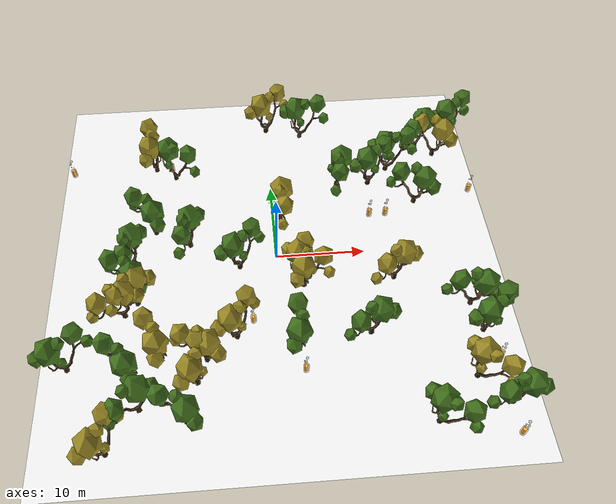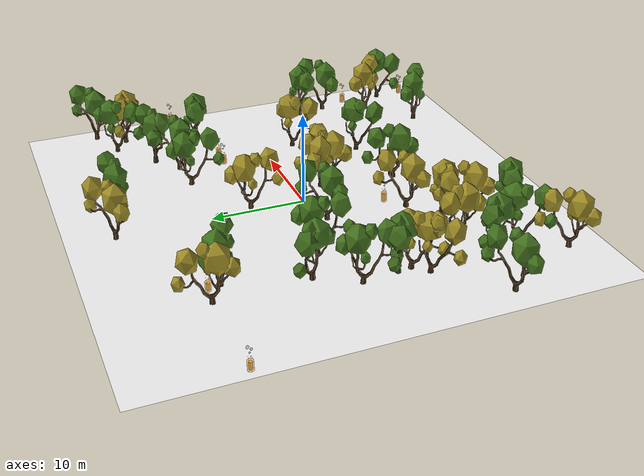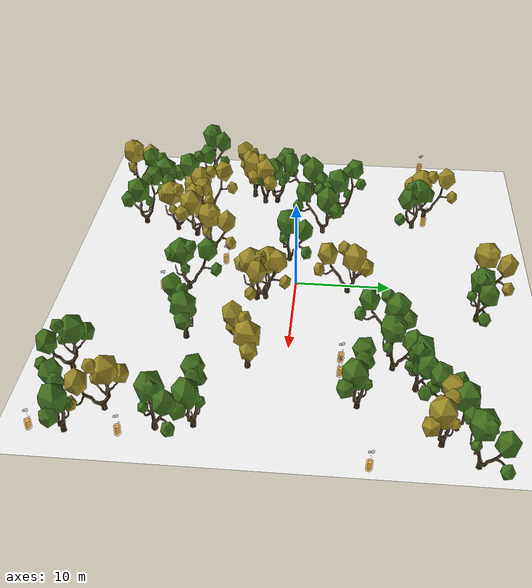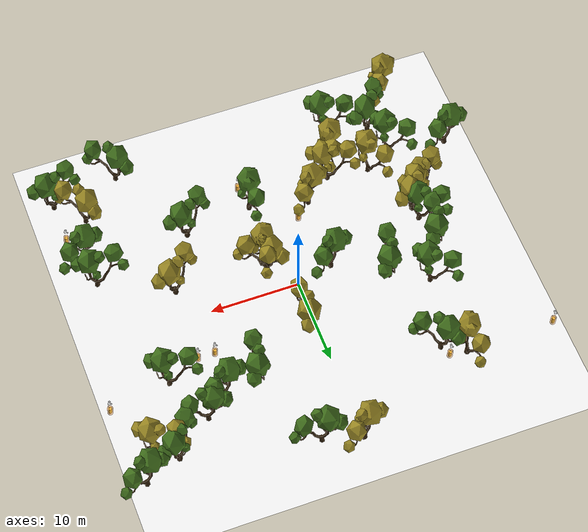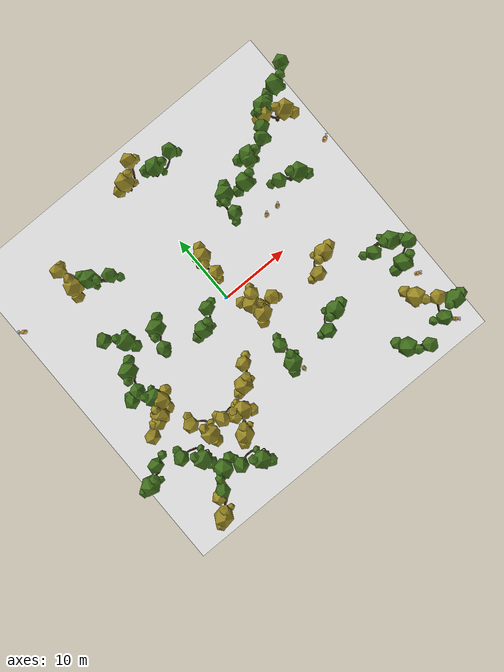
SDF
<sdf version="1.8">
 <world name="bushland_world">
  <plugin filename="ignition-gazebo-thermal-system" name="ignition::gazebo::systems::Thermal">
   <temperature>293.15</temperature>
  </plugin>
  <plugin name="ignition::gazebo::systems::Physics" filename="ignition-gazebo-physics-system"/>
  <plugin name="ignition::gazebo::systems::UserCommands" filename="ignition-gazebo-user-commands-system"/>
  <plugin name="ignition::gazebo::systems::SceneBroadcaster" filename="ignition-gazebo-scene-broadcaster-system"/>
  <plugin name="ignition::gazebo::systems::Contact" filename="ignition-gazebo-contact-system"/>
  <plugin name="ignition::gazebo::systems::Sensors" filename="libignition-gazebo-sensors-system.so"/>
  <light name="sun" type="directional">
   <pose>0 0 10 0 -0 0</pose>
   <diffuse>0.8 0.8 0.8 1</diffuse>
   <specular>0.2 0.2 0.2 1</specular>
   <attenuation>
    <range>1000</range>
    <constant>0.9</constant>
    <linear>0.01</linear>
    <quadratic>0.001</quadratic>
   </attenuation>
   <direction>-0.5 0.1 -0.9</direction>
  </light>
  <gravity>0 0 -9.81</gravity>
  <magnetic_field>6e-06 2.3e-05 -4.2e-05</magnetic_field>
  <atmosphere type="adiabatic"/>
  <physics name="default_physics" type="ignored">
   <max_step_size>0.01</max_step_size>
   <real_time_factor>1</real_time_factor>
   <real_time_update_rate>100</real_time_update_rate>
  </physics>
  <scene><ambient>1.0 1.0 1.0</ambient><background>0.8 0.8 0.8</background><shadows>1</shadows></scene>
  <spherical_coordinates>
   <latitude_deg>0.0</latitude_deg>
   <longitude_deg>0.0</longitude_deg>
   <elevation>10.0</elevation>
   <heading_deg>0</heading_deg>
   <surface_model>EARTH_WGS84</surface_model>
  </spherical_coordinates>
  <include><uri>model://big_forest_plane</uri><name>big_forest_plane</name></include>
  <include>
   <uri>model://low_poly_tree_dark</uri>
   <name>oak_1</name>
   <pose>-12.68 -11.54 0 0 0.05 1.23</pose>
   <static>true</static>
  </include>
  <include>
   <uri>model://low_poly_tree_dark</uri>
   <name>oak_2</name>
   <pose>-16.68 -6.33 0 0 0.05 2.91</pose>
   <static>true</static>
  </include>
  <include>
   <uri>model://low_poly_tree_dark</uri>
   <name>oak_3</name>
   <pose>2.76 -3.91 0 0 0.05 0.67</pose>
   <static>true</static>
  </include>
  <include>
   <uri>model://low_poly_tree_dark</uri>
   <name>oak_4</name>
   <pose>12.81 -3.66 0 0 0.05 3.01</pose>
   <static>true</static>
  </include>
  <include>
   <uri>model://low_poly_tree_dark</uri>
   <name>oak_5</name>
   <pose>20.90 14.26 0 0 0.05 2.00</pose>
   <static>true</static>
  </include>
  <include>
   <uri>model://low_poly_tree_dark</uri>
   <name>oak_6</name>
   <pose>-13.92 14.18 0 0 0.05 0.85</pose>
   <static>true</static>
  </include>
  <include>
   <uri>model://low_poly_tree_dark</uri>
   <name>oak_7</name>
   <pose>-8.98 -14.52 0 0 0.05 0.55</pose>
   <static>true</static>
  </include>
  <include>
   <uri>model://low_poly_tree_dark</uri>
   <name>oak_8</name>
   <pose>0.85 5.54 0 0 0.05 3.99</pose>
   <static>true</static>
  </include>
  <include>
   <uri>model://low_poly_tree_dark</uri>
   <name>oak_9</name>
   <pose>0.07 19.93 0 0 0.05 6.18</pose>
   <static>true</static>
  </include>
  <include>
   <uri>model://low_poly_tree_dark</uri>
   <name>oak_10</name>
   <pose>2.54 -3.03 0 0 0.05 5.15</pose>
   <static>true</static>
  </include>
  <include>
   <uri>model://low_poly_tree_dark</uri>
   <name>oak_11</name>
   <pose>-8.00 -12.08 0 0 0.05 2.06</pose>
   <static>true</static>
  </include>
  <include>
   <uri>model://low_poly_tree_dark</uri>
   <name>oak_12</name>
   <pose>-17.71 -21.04 0 0 0.05 0.30</pose>
   <static>true</static>
  </include>
  <include>
   <uri>model://low_poly_tree_dark</uri>
   <name>oak_13</name>
   <pose>19.17 -15.91 0 0 0.05 4.78</pose>
   <static>true</static>
  </include>
  <include>
   <uri>model://low_poly_tree</uri>
   <name>oak_14</name>
   <pose>14.56 12.24 0 0 0.05 5.70</pose>
   <static>true</static>
  </include>
  <include>
   <uri>model://low_poly_tree</uri>
   <name>oak_15</name>
   <pose>-11.53 12.69 0 0 0.05 4.99</pose>
   <static>true</static>
  </include>
  <include>
   <uri>model://low_poly_tree_dark</uri>
   <name>oak_16</name>
   <pose>-15.41 -4.93 0 0 0.05 3.22</pose>
   <static>true</static>
  </include>
  <include>
   <uri>model://low_poly_tree_dark</uri>
   <name>oak_17</name>
   <pose>-4.83 -9.70 0 0 0.05 0.13</pose>
   <static>true</static>
  </include>
  <include>
   <uri>model://low_poly_tree</uri>
   <name>oak_18</name>
   <pose>11.99 10.13 0 0 0.05 6.19</pose>
   <static>true</static>
  </include>
  <include>
   <uri>model://low_poly_tree</uri>
   <name>oak_19</name>
   <pose>18.92 15.69 0 0 0.05 3.20</pose>
   <static>true</static>
  </include>
  <include>
   <uri>model://low_poly_tree</uri>
   <name>oak_20</name>
   <pose>21.08 -10.86 0 0 0.05 6.20</pose>
   <static>true</static>
  </include>
  <include>
   <uri>model://low_poly_tree</uri>
   <name>oak_21</name>
   <pose>20.49 -7.55 0 0 0.05 2.32</pose>
   <static>true</static>
  </include>
  <include>
   <uri>model://low_poly_tree</uri>
   <name>oak_22</name>
   <pose>-15.98 0.31 0 0 0.05 3.74</pose>
   <static>true</static>
  </include>
  <include>
   <uri>model://low_poly_tree</uri>
   <name>oak_23</name>
   <pose>-10.04 -18.46 0 0 0.05 1.89</pose>
   <static>true</static>
  </include>
  <include>
   <uri>model://low_poly_tree</uri>
   <name>oak_24</name>
   <pose>-14.72 -16.93 0 0 0.05 3.20</pose>
   <static>true</static>
  </include>
  <include>
   <uri>model://low_poly_tree</uri>
   <name>oak_25</name>
   <pose>9.24 -10.23 0 0 0.05 2.93</pose>
   <static>true</static>
  </include>
  <include>
   <uri>model://low_poly_tree</uri>
   <name>oak_26</name>
   <pose>-15.73 -13.51 0 0 0.05 1.58</pose>
   <static>true</static>
  </include>
  <include>
   <uri>model://low_poly_tree</uri>
   <name>oak_27</name>
   <pose>-15.60 -3.49 0 0 0.05 1.80</pose>
   <static>true</static>
  </include>
  <include>
   <uri>model://low_poly_tree</uri>
   <name>oak_28</name>
   <pose>17.08 6.86 0 0 0.05 2.12</pose>
   <static>true</static>
  </include>
  <include>
   <uri>model://low_poly_tree</uri>
   <name>oak_29</name>
   <pose>8.11 9.88 0 0 0.05 3.77</pose>
   <static>true</static>
  </include>
  <include>
   <uri>model://low_poly_tree</uri>
   <name>oak_30</name>
   <pose>4.34 18.71 0 0 0.05 5.60</pose>
   <static>true</static>
  </include>
  <include>
   <uri>model://low_poly_tree</uri>
   <name>oak_31</name>
   <pose>22.98 17.27 0 0 0.05 6.11</pose>
   <static>true</static>
  </include>
  <include>
   <uri>model://low_poly_tree</uri>
   <name>oak_32</name>
   <pose>14.34 -20.25 0 0 0.05 4.94</pose>
   <static>true</static>
  </include>
  <include>
   <uri>model://low_poly_tree</uri>
   <name>oak_33</name>
   <pose>-4.18 -1.03 0 0 0.05 6.24</pose>
   <static>true</static>
  </include>
  <include>
   <uri>model://low_poly_tree</uri>
   <name>oak_34</name>
   <pose>21.97 -18.84 0 0 0.05 2.72</pose>
   <static>true</static>
  </include>
  <include>
   <uri>model://low_poly_tree</uri>
   <name>oak_35</name>
   <pose>-22.23 -12.17 0 0 0.05 6.14</pose>
   <static>true</static>
  </include>
  <include>
   <uri>model://low_poly_tree</uri>
   <name>oak_36</name>
   <pose>1.61 -11.29 0 0 0.05 0.77</pose>
   <static>true</static>
  </include>
  <include>
   <uri>model://low_poly_tree</uri>
   <name>oak_37</name>
   <pose>-9.73 2.34 0 0 0.05 3.67</pose>
   <static>true</static>
  </include>
  <include>
   <uri>model://low_poly_tree</uri>
   <name>oak_38</name>
   <pose>-13.69 4.43 0 0 0.05 1.64</pose>
   <static>true</static>
  </include>
  <include>
   <uri>model://fire</uri>
   <name>test_fire</name>
   <pose>11.39 5.15 0 0 0.05 1.91</pose>
   <static>true</static>
  </include>
  <include>
   <uri>model://fire</uri>
   <name>test_fire2</name>
   <pose>13.3 5.15 0 0 0.05 1.91</pose>
   <static>true</static>
  </include>
  <include>
   <uri>model://fire</uri>
   <name>test_fire3</name>
   <pose>24 8 0 0 0.05 1.91</pose>
   <static>true</static>
  </include>
  <include>
   <uri>model://fire</uri>
   <name>test_fire4</name>
   <pose>-3 -8 0 0 0.05 1.91</pose>
   <static>true</static>
  </include>
  <include>
   <uri>model://fire</uri>
   <name>test_fire5</name>
   <pose>-12 14 0 0 0.05 1.91</pose>
   <static>true</static>
  </include>
  <include>
   <uri>model://fire</uri>
   <name>test_fire6</name>
   <pose>2 -14 0 0 0.05 1.91</pose>
   <static>true</static>
  </include>
  <include>
   <uri>model://fire</uri>
   <name>test_fire7</name>
   <pose>22 -22 0 0 0.05 1.91</pose>
   <static>true</static>
  </include>
  <include>
   <uri>model://fire</uri>
   <name>test_fire8</name>
   <pose>-24 14 0 0 0.05 1.91</pose>
   <static>true</static>
  </include>
  <include>
   <uri>model://fire</uri>
   <name>test_fire9</name>
   <pose>22 -14 0 0 0.05 1.91</pose>
   <static>true</static>
  </include>
 </world>
</sdf>

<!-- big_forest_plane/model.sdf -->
<sdf version="1.7">
<model name="grass_plane">
    <static>true</static>
    <link name="link">
        <collision name="collision">
            <geometry>
            <box>
                <normal>0 0 1</normal>
                <size>50 50 0.01</size>
            </box>
            </geometry>
        </collision>
        <visual name="visual">
            <cast_shadows>false</cast_shadows>
            <geometry>
            <plane>
                <normal>0 0 1</normal>
                <size>50 50</size>
            </plane>
            </geometry>
            <material>
                <ambient>1.0 1.0 1.0 1</ambient>
                <diffuse>1.0 1.0 1.0 1</diffuse>
                <pbr>
                    <metal>
                    <albedo_map>
                        model://forest_plane/materials/textures/forest_overhead.png
                    </albedo_map>
                    </metal>
                </pbr>
            </material>
        </visual>
    </link>
</model>
</sdf>

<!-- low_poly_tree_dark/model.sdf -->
<sdf version="1.6">
  <model name="low_poly_tree_dark">
    <static>true</static>
    <link name="link">
      <pose>0 0 0 1.5708 0 0</pose>
      <collision name="collision">
        <geometry>
          <mesh>
            <uri>model://low_poly_tree_dark/meshes/low_poly_tree_dark.dae</uri>
            <scale>200 200 200</scale>
          </mesh>
        </geometry>
      </collision>

      <visual name="visual">
        <geometry>
          <mesh>
            <uri>model://low_poly_tree_dark/meshes/low_poly_tree_dark.dae</uri>
            <scale>200 200 200</scale>
          </mesh>
        </geometry>
      </visual>
    </link>
  </model>
</sdf>

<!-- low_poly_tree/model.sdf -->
<sdf version="1.6">
  <model name="low_poly_tree">
    <static>true</static>
    <link name="link">
      <pose>0 0 0 1.5708 0 0</pose>
      <collision name="collision">
        <geometry>
          <mesh>
            <uri>model://low_poly_tree/meshes/low_poly_tree.dae</uri>
            <scale>200 200 200</scale>
          </mesh>
        </geometry>
      </collision>

      <visual name="visual">
        <geometry>
          <mesh>
            <uri>model://low_poly_tree/meshes/low_poly_tree.dae</uri>
            <scale>200 200 200</scale>
          </mesh>
        </geometry>
      </visual>
    </link>
  </model>
</sdf>

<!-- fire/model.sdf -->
<sdf version="1.6">
  <model name="fire">
    <static>true</static>
    <link name="fire_link">
      <pose>0 0 0.5 0 0 0</pose>

      <!-- Outer fire visual (transparent) -->
      <visual name="fire_visual">
        <geometry>
          <cylinder>
            <radius>0.3</radius>
            <length>1.0</length>
          </cylinder>
        </geometry>
        <material>
          <ambient>1 0.3 0 0.4</ambient>
          <diffuse>1 0.5 0 0.4</diffuse>
          <emissive>1 0.2 0 0.3</emissive>
        </material>
      </visual>

      <!-- Inner flame effect (smaller cylinder inside) -->
      <visual name="flame_effect">
        <pose>0 0 0 0 0 0</pose>
        <geometry>
          <cylinder>
            <radius>0.18</radius>
            <length>0.8</length>
          </cylinder>
        </geometry>
        <material>
          <ambient>1 0.8 0.2 0.9</ambient>
          <diffuse>1 0.9 0.4 0.9</diffuse>
          <emissive>1 0.7 0.3 0.8</emissive>
        </material>
      </visual>

      <!-- Particle effects - Sparks and embers -->
      <visual name="spark_1">
        <pose>0.15 0.1 0.85 0 0 0</pose>
        <geometry>
          <sphere>
            <radius>0.02</radius>
          </sphere>
        </geometry>
        <material>
          <ambient>1 0.8 0 1.0</ambient>
          <diffuse>1 0.9 0.2 1.0</diffuse>
          <emissive>1 0.9 0.3 1.0</emissive>
        </material>
      </visual>

      <visual name="spark_2">
        <pose>-0.12 0.18 0.8 0 0 0</pose>
        <geometry>
          <sphere>
            <radius>0.015</radius>
          </sphere>
        </geometry>
        <material>
          <ambient>1 0.7 0.1 1.0</ambient>
          <diffuse>1 0.8 0.2 1.0</diffuse>
          <emissive>1 0.8 0.4 1.0</emissive>
        </material>
      </visual>

      <visual name="spark_3">
        <pose>0.08 -0.15 0.9 0 0 0</pose>
        <geometry>
          <sphere>
            <radius>0.018</radius>
          </sphere>
        </geometry>
        <material>
          <ambient>1 0.9 0.2 1.0</ambient>
          <diffuse>1 1.0 0.4 1.0</diffuse>
          <emissive>1 1.0 0.5 1.0</emissive>
        </material>
      </visual>

      <visual name="spark_4">
        <pose>-0.2 -0.05 0.95 0 0 0</pose>
        <geometry>
          <sphere>
            <radius>0.012</radius>
          </sphere>
        </geometry>
        <material>
          <ambient>1 0.6 0 1.0</ambient>
          <diffuse>1 0.8 0.1 1.0</diffuse>
          <emissive>1 0.9 0.2 1.0</emissive>
        </material>
      </visual>

      <visual name="spark_5">
        <pose>0.22 0.08 0.83 0 0 0</pose>
        <geometry>
          <sphere>
            <radius>0.025</radius>
          </sphere>
        </geometry>
        <material>
          <ambient>1 0.5 0 1.0</ambient>
          <diffuse>1 0.7 0.1 1.0</diffuse>
          <emissive>1 0.8 0.2 1.0</emissive>
        </material>
      </visual>

      <!-- Rising ember particles -->
      <visual name="ember_1">
        <pose>0.05 0.12 1.05 0 0 0</pose>
        <geometry>
          <sphere>
            <radius>0.01</radius>
          </sphere>
        </geometry>
        <material>
          <ambient>1 0.4 0 0.9</ambient>
          <diffuse>1 0.6 0.1 0.9</diffuse>
          <emissive>1 0.7 0.2 0.8</emissive>
        </material>
      </visual>

      <visual name="ember_2">
        <pose>-0.08 0.06 1.15 0 0 0</pose>
        <geometry>
          <sphere>
            <radius>0.008</radius>
          </sphere>
        </geometry>
        <material>
          <ambient>1 0.3 0 0.8</ambient>
          <diffuse>1 0.5 0.1 0.8</diffuse>
          <emissive>1 0.6 0.2 0.7</emissive>
        </material>
      </visual>

      <visual name="ember_3">
        <pose>0.11 -0.09 1.25 0 0 0</pose>
        <geometry>
          <sphere>
            <radius>0.006</radius>
          </sphere>
        </geometry>
        <material>
          <ambient>1 0.2 0 0.7</ambient>
          <diffuse>1 0.4 0 0.7</diffuse>
          <emissive>1 0.5 0.1 0.6</emissive>
        </material>
      </visual>

      <!-- Smoke particles (darker, larger) -->
      <visual name="smoke_1">
        <pose>0.1 0.15 1.45 0 0 0</pose>
        <geometry>
          <sphere>
            <radius>0.08</radius>
          </sphere>
        </geometry>
        <material>
          <ambient>0.3 0.3 0.3 0.4</ambient>
          <diffuse>0.4 0.4 0.4 0.5</diffuse>
          <emissive>0.1 0.1 0.1 0.3</emissive>
        </material>
      </visual>

      <visual name="smoke_2">
        <pose>-0.15 0.08 1.65 0 0 0</pose>
        <geometry>
          <sphere>
            <radius>0.12</radius>
          </sphere>
        </geometry>
        <material>
          <ambient>0.2 0.2 0.2 0.3</ambient>
          <diffuse>0.3 0.3 0.3 0.4</diffuse>
          <emissive>0.05 0.05 0.05 0.2</emissive>
        </material>
      </visual>

      <visual name="smoke_3">
        <pose>0.08 -0.12 1.85 0 0 0</pose>
        <geometry>
          <sphere>
            <radius>0.15</radius>
          </sphere>
        </geometry>
        <material>
          <ambient>0.15 0.15 0.15 0.25</ambient>
          <diffuse>0.25 0.25 0.25 0.3</diffuse>
          <emissive>0.02 0.02 0.02 0.1</emissive>
        </material>
      </visual>

      <!-- Heat distortion effects (very transparent) -->
      <visual name="heat_shimmer_1">
        <pose>0.2 0.1 0.55 0 0 0</pose>
        <geometry>
          <sphere>
            <radius>0.05</radius>
          </sphere>
        </geometry>
        <material>
          <ambient>1 0.8 0.6 0.1</ambient>
          <diffuse>1 0.9 0.7 0.15</diffuse>
          <emissive>1 0.9 0.8 0.1</emissive>
        </material>
      </visual>

      <visual name="heat_shimmer_2">
        <pose>-0.18 -0.08 0.75 0 0 0</pose>
        <geometry>
          <sphere>
            <radius>0.06</radius>
          </sphere>
        </geometry>
        <material>
          <ambient>1 0.7 0.5 0.08</ambient>
          <diffuse>1 0.8 0.6 0.12</diffuse>
          <emissive>1 0.8 0.7 0.08</emissive>
        </material>
      </visual>

      <!-- Flying sparks (smaller, higher up) -->
      <visual name="flying_spark_1">
        <pose>0.3 0.2 1.35 0 0 0</pose>
        <geometry>
          <sphere>
            <radius>0.005</radius>
          </sphere>
        </geometry>
        <material>
          <ambient>1 1 0.5 1.0</ambient>
          <diffuse>1 1 0.7 1.0</diffuse>
          <emissive>1 1 0.8 1.0</emissive>
        </material>
      </visual>

      <visual name="flying_spark_2">
        <pose>-0.25 0.18 1.55 0 0 0</pose>
        <geometry>
          <sphere>
            <radius>0.004</radius>
          </sphere>
        </geometry>
        <material>
          <ambient>1 0.9 0.3 1.0</ambient>
          <diffuse>1 1 0.5 1.0</diffuse>
          <emissive>1 1 0.6 1.0</emissive>
        </material>
      </visual>

      <visual name="flying_spark_3">
        <pose>0.28 -0.22 1.75 0 0 0</pose>
        <geometry>
          <sphere>
            <radius>0.003</radius>
          </sphere>
        </geometry>
        <material>
          <ambient>1 0.8 0.2 1.0</ambient>
          <diffuse>1 0.9 0.4 1.0</diffuse>
          <emissive>1 1 0.5 1.0</emissive>
        </material>
      </visual>

      <!-- Collision component -->
      <collision name="fire_collision">
        <geometry>
          <cylinder>
            <radius>0.3</radius>
            <length>1.0</length>
          </cylinder>
        </geometry>
      </collision>
      <!-- Thermal properties on the fire link so the camera can see it -->
      <plugin filename="libignition-gazebo-thermal-system.so" name="ignition::gazebo::systems::Thermal">
        <temperature>
          <uniform>
            <temperature>673.15</temperature>  <!-- 400°C in Kelvin -->
          </uniform>
        </temperature>
      </plugin>
    </link>

  </model>
</sdf>
